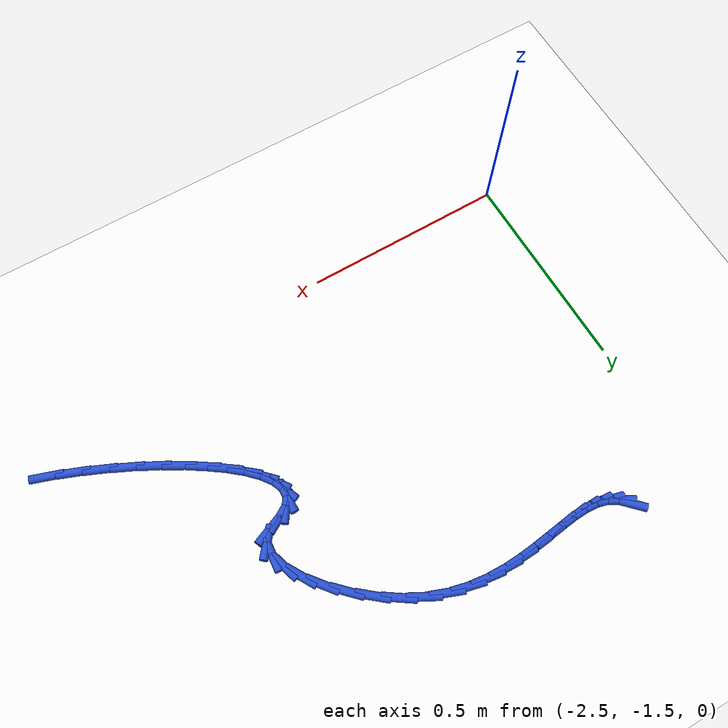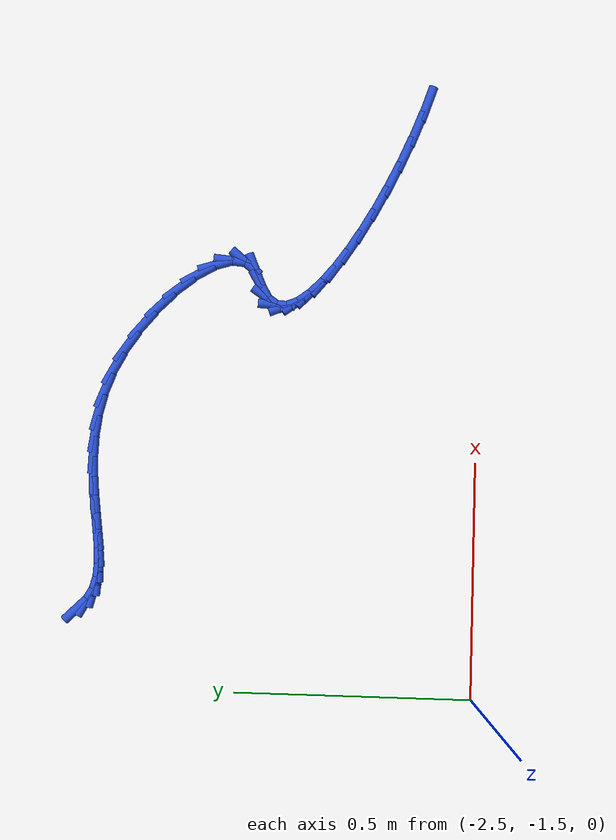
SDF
<sdf version="1.6">
 <world name="default">
  <model name="ground_plane">
   <static>1</static>
   <link name="link">
    <collision name="collision">
     <geometry><plane><normal>0 0 1</normal><size>100 100</size></plane></geometry>
     <surface><friction><ode><mu>100</mu><mu2>50</mu2></ode></friction></surface>
    </collision>
    <visual name="visual">
     <cast_shadows>0</cast_shadows>
     <geometry><plane><normal>0 0 1</normal><size>100 100</size></plane></geometry>
     <material>
      <script><uri>file://media/materials/scripts/gazebo.material</uri><name>Gazebo/WhiteGlow</name></script>
     </material>
    </visual>
   </link>
  </model>
  <model name="line">
   <link name="link_134">
    <pose>-2.328690085437541 -0.6660517396470073 0.01 0 1.57 -0.7948061629573334</pose>
    <collision name="collision">
     <geometry><cylinder><radius>0.01</radius><length>0.08</length></cylinder></geometry>
    </collision>
    <visual name="visual">
     <material>
      <script><name>Gazebo/Blue</name><uri>file://media/materials/scripts/gazebo.material</uri></script>
     </material>
     <geometry><cylinder><radius>0.01</radius><length>0.08</length></cylinder></geometry>
    </visual>
   </link>
   <link name="link_135">
    <pose>-2.3107869364579394 -0.6842949637218563 0.01 0 1.57 -0.509242399845247</pose>
    <collision name="collision">
     <geometry><cylinder><radius>0.01</radius><length>0.08</length></cylinder></geometry>
    </collision>
    <visual name="visual">
     <material>
      <script><name>Gazebo/Blue</name><uri>file://media/materials/scripts/gazebo.material</uri></script>
     </material>
     <geometry><cylinder><radius>0.01</radius><length>0.08</length></cylinder></geometry>
    </visual>
   </link>
   <link name="link_136">
    <pose>-2.289153655210102 -0.696374219925081 0.01 0 1.57 -0.2507882576714948</pose>
    <collision name="collision">
     <geometry><cylinder><radius>0.01</radius><length>0.08</length></cylinder></geometry>
    </collision>
    <visual name="visual">
     <material>
      <script><name>Gazebo/Blue</name><uri>file://media/materials/scripts/gazebo.material</uri></script>
     </material>
     <geometry><cylinder><radius>0.01</radius><length>0.08</length></cylinder></geometry>
    </visual>
   </link>
   <link name="link_137">
    <pose>-2.2638732972823266 -0.7028505860600587 0.01 0 1.57 -0.06898305752131897</pose>
    <collision name="collision">
     <geometry><cylinder><radius>0.01</radius><length>0.08</length></cylinder></geometry>
    </collision>
    <visual name="visual">
     <material>
      <script><name>Gazebo/Blue</name><uri>file://media/materials/scripts/gazebo.material</uri></script>
     </material>
     <geometry><cylinder><radius>0.01</radius><length>0.08</length></cylinder></geometry>
    </visual>
   </link>
   <link name="link_138">
    <pose>-2.235211617304648 -0.7048308985884072 0.01 0 1.57 0.044161655550941</pose>
    <collision name="collision">
     <geometry><cylinder><radius>0.01</radius><length>0.08</length></cylinder></geometry>
    </collision>
    <visual name="visual">
     <material>
      <script><name>Gazebo/Blue</name><uri>file://media/materials/scripts/gazebo.material</uri></script>
     </material>
     <geometry><cylinder><radius>0.01</radius><length>0.08</length></cylinder></geometry>
    </visual>
   </link>
   <link name="link_139">
    <pose>-2.203435951880765 -0.7034267196441689 0.01 0 1.57 0.10580966423407037</pose>
    <collision name="collision">
     <geometry><cylinder><radius>0.01</radius><length>0.08</length></cylinder></geometry>
    </collision>
    <visual name="visual">
     <material>
      <script><name>Gazebo/Blue</name><uri>file://media/materials/scripts/gazebo.material</uri></script>
     </material>
     <geometry><cylinder><radius>0.01</radius><length>0.08</length></cylinder></geometry>
    </visual>
   </link>
   <link name="link_140">
    <pose>-2.1688136376143725 -0.6997496113613847 0.01 0 1.57 0.12933485083657287</pose>
    <collision name="collision">
     <geometry><cylinder><radius>0.01</radius><length>0.08</length></cylinder></geometry>
    </collision>
    <visual name="visual">
     <material>
      <script><name>Gazebo/Blue</name><uri>file://media/materials/scripts/gazebo.material</uri></script>
     </material>
     <geometry><cylinder><radius>0.01</radius><length>0.08</length></cylinder></geometry>
    </visual>
   </link>
   <link name="link_141">
    <pose>-2.1316120111091705 -0.6949111358740966 0.01 0 1.57 0.12308595671876543</pose>
    <collision name="collision">
     <geometry><cylinder><radius>0.01</radius><length>0.08</length></cylinder></geometry>
    </collision>
    <visual name="visual">
     <material>
      <script><name>Gazebo/Blue</name><uri>file://media/materials/scripts/gazebo.material</uri></script>
     </material>
     <geometry><cylinder><radius>0.01</radius><length>0.08</length></cylinder></geometry>
    </visual>
   </link>
   <link name="link_142">
    <pose>-2.0920984089688544 -0.6900228553163459 0.01 0 1.57 0.09181727335157093</pose>
    <collision name="collision">
     <geometry><cylinder><radius>0.01</radius><length>0.08</length></cylinder></geometry>
    </collision>
    <visual name="visual">
     <material>
      <script><name>Gazebo/Blue</name><uri>file://media/materials/scripts/gazebo.material</uri></script>
     </material>
     <geometry><cylinder><radius>0.01</radius><length>0.08</length></cylinder></geometry>
    </visual>
   </link>
   <link name="link_143">
    <pose>-2.0505401677971227 -0.6861963318221744 0.01 0 1.57 0.03813043214113927</pose>
    <collision name="collision">
     <geometry><cylinder><radius>0.01</radius><length>0.08</length></cylinder></geometry>
    </collision>
    <visual name="visual">
     <material>
      <script><name>Gazebo/Blue</name><uri>file://media/materials/scripts/gazebo.material</uri></script>
     </material>
     <geometry><cylinder><radius>0.01</radius><length>0.08</length></cylinder></geometry>
    </visual>
   </link>
   <link name="link_144">
    <pose>-2.0072046241976698 -0.6845431275256235 0.01 0 1.57 -0.036368359047009524</pose>
    <collision name="collision">
     <geometry><cylinder><radius>0.01</radius><length>0.08</length></cylinder></geometry>
    </collision>
    <visual name="visual">
     <material>
      <script><name>Gazebo/Blue</name><uri>file://media/materials/scripts/gazebo.material</uri></script>
     </material>
     <geometry><cylinder><radius>0.01</radius><length>0.08</length></cylinder></geometry>
    </visual>
   </link>
   <link name="link_145">
    <pose>-1.9623591147741952 -0.6861748045607347 0.01 0 1.57 -0.13005719022609996</pose>
    <collision name="collision">
     <geometry><cylinder><radius>0.01</radius><length>0.08</length></cylinder></geometry>
    </collision>
    <visual name="visual">
     <material>
      <script><name>Gazebo/Blue</name><uri>file://media/materials/scripts/gazebo.material</uri></script>
     </material>
     <geometry><cylinder><radius>0.01</radius><length>0.08</length></cylinder></geometry>
    </visual>
   </link>
   <link name="link_146">
    <pose>-1.9162709761303969 -0.6922029250615498 0.01 0 1.57 -0.2403792284057496</pose>
    <collision name="collision">
     <geometry><cylinder><radius>0.01</radius><length>0.08</length></cylinder></geometry>
    </collision>
    <visual name="visual">
     <material>
      <script><name>Gazebo/Blue</name><uri>file://media/materials/scripts/gazebo.material</uri></script>
     </material>
     <geometry><cylinder><radius>0.01</radius><length>0.08</length></cylinder></geometry>
    </visual>
   </link>
   <link name="link_147">
    <pose>-1.869207544869971 -0.7037390511621103 0.01 0 1.57 -0.36319395789943737</pose>
    <collision name="collision">
     <geometry><cylinder><radius>0.01</radius><length>0.08</length></cylinder></geometry>
    </collision>
    <visual name="visual">
     <material>
      <script><name>Gazebo/Blue</name><uri>file://media/materials/scripts/gazebo.material</uri></script>
     </material>
     <geometry><cylinder><radius>0.01</radius><length>0.08</length></cylinder></geometry>
    </visual>
   </link>
   <link name="link_148">
    <pose>-1.821436157596613 -0.7218947449964581 0.01 0 1.57 -0.489639402621013</pose>
    <collision name="collision">
     <geometry><cylinder><radius>0.01</radius><length>0.08</length></cylinder></geometry>
    </collision>
    <visual name="visual">
     <material>
      <script><name>Gazebo/Blue</name><uri>file://media/materials/scripts/gazebo.material</uri></script>
     </material>
     <geometry><cylinder><radius>0.01</radius><length>0.08</length></cylinder></geometry>
    </visual>
   </link>
   <link name="link_149">
    <pose>-1.7733818810251576 -0.7475040726114826 0.01 0 1.57 -0.5989780238515194</pose>
    <collision name="collision">
     <geometry><cylinder><radius>0.01</radius><length>0.08</length></cylinder></geometry>
    </collision>
    <visual name="visual">
     <material>
      <script><name>Gazebo/Blue</name><uri>file://media/materials/scripts/gazebo.material</uri></script>
     </material>
     <geometry><cylinder><radius>0.01</radius><length>0.08</length></cylinder></geometry>
    </visual>
   </link>
   <link name="link_150">
    <pose>-1.7265754384135963 -0.7794559079645443 0.01 0 1.57 -0.6954875602217744</pose>
    <collision name="collision">
     <geometry><cylinder><radius>0.01</radius><length>0.08</length></cylinder></geometry>
    </collision>
    <visual name="visual">
     <material>
      <script><name>Gazebo/Blue</name><uri>file://media/materials/scripts/gazebo.material</uri></script>
     </material>
     <geometry><cylinder><radius>0.01</radius><length>0.08</length></cylinder></geometry>
    </visual>
   </link>
   <link name="link_151">
    <pose>-1.683020545551318 -0.8158069847465057 0.01 0 1.57 -0.7919616935738386</pose>
    <collision name="collision">
     <geometry><cylinder><radius>0.01</radius><length>0.08</length></cylinder></geometry>
    </collision>
    <visual name="visual">
     <material>
      <script><name>Gazebo/Blue</name><uri>file://media/materials/scripts/gazebo.material</uri></script>
     </material>
     <geometry><cylinder><radius>0.01</radius><length>0.08</length></cylinder></geometry>
    </visual>
   </link>
   <link name="link_152">
    <pose>-1.6447227062705978 -0.8546108909273448 0.01 0 1.57 -0.9024941218368407</pose>
    <collision name="collision">
     <geometry><cylinder><radius>0.01</radius><length>0.08</length></cylinder></geometry>
    </collision>
    <visual name="visual">
     <material>
      <script><name>Gazebo/Blue</name><uri>file://media/materials/scripts/gazebo.material</uri></script>
     </material>
     <geometry><cylinder><radius>0.01</radius><length>0.08</length></cylinder></geometry>
    </visual>
   </link>
   <link name="link_153">
    <pose>-1.6136874244037112 -0.8939212144770411 0.01 0 1.57 -1.049125156011582</pose>
    <collision name="collision">
     <geometry><cylinder><radius>0.01</radius><length>0.08</length></cylinder></geometry>
    </collision>
    <visual name="visual">
     <material>
      <script><name>Gazebo/Blue</name><uri>file://media/materials/scripts/gazebo.material</uri></script>
     </material>
     <geometry><cylinder><radius>0.01</radius><length>0.08</length></cylinder></geometry>
    </visual>
   </link>
   <link name="link_154">
    <pose>-1.5919202037829343 -0.9317915433655706 0.01 0 1.57 -1.2753940062139946</pose>
    <collision name="collision">
     <geometry><cylinder><radius>0.01</radius><length>0.08</length></cylinder></geometry>
    </collision>
    <visual name="visual">
     <material>
      <script><name>Gazebo/Blue</name><uri>file://media/materials/scripts/gazebo.material</uri></script>
     </material>
     <geometry><cylinder><radius>0.01</radius><length>0.08</length></cylinder></geometry>
    </visual>
   </link>
   <link name="link_155">
    <pose>-1.581426548240543 -0.9662754655629127 0.01 0 1.57 1.4755346639404754</pose>
    <collision name="collision">
     <geometry><cylinder><radius>0.01</radius><length>0.08</length></cylinder></geometry>
    </collision>
    <visual name="visual">
     <material>
      <script><name>Gazebo/Blue</name><uri>file://media/materials/scripts/gazebo.material</uri></script>
     </material>
     <geometry><cylinder><radius>0.01</radius><length>0.08</length></cylinder></geometry>
    </visual>
   </link>
   <link name="link_156">
    <pose>-1.5842119616088124 -0.9954265690390458 0.01 0 1.57 0.8802977670934119</pose>
    <collision name="collision">
     <geometry><cylinder><radius>0.01</radius><length>0.08</length></cylinder></geometry>
    </collision>
    <visual name="visual">
     <material>
      <script><name>Gazebo/Blue</name><uri>file://media/materials/scripts/gazebo.material</uri></script>
     </material>
     <geometry><cylinder><radius>0.01</radius><length>0.08</length></cylinder></geometry>
    </visual>
   </link>
   <link name="link_157">
    <pose>-1.6022819477200179 -1.0172984417639483 0.01 0 1.57 0.3949341963896124</pose>
    <collision name="collision">
     <geometry><cylinder><radius>0.01</radius><length>0.08</length></cylinder></geometry>
    </collision>
    <visual name="visual">
     <material>
      <script><name>Gazebo/Blue</name><uri>file://media/materials/scripts/gazebo.material</uri></script>
     </material>
     <geometry><cylinder><radius>0.01</radius><length>0.08</length></cylinder></geometry>
    </visual>
   </link>
   <link name="link_158">
    <pose>-1.6352339891464682 -1.031033992542826 0.01 0 1.57 0.5292857121228023</pose>
    <collision name="collision">
     <geometry><cylinder><radius>0.01</radius><length>0.08</length></cylinder></geometry>
    </collision>
    <visual name="visual">
     <material>
      <script><name>Gazebo/Blue</name><uri>file://media/materials/scripts/gazebo.material</uri></script>
     </material>
     <geometry><cylinder><radius>0.01</radius><length>0.08</length></cylinder></geometry>
    </visual>
   </link>
   <link name="link_159">
    <pose>-1.6607828626165073 -1.0459790082172755 0.01 0 1.57 0.9628068015025113</pose>
    <collision name="collision">
     <geometry><cylinder><radius>0.01</radius><length>0.08</length></cylinder></geometry>
    </collision>
    <visual name="visual">
     <material>
      <script><name>Gazebo/Blue</name><uri>file://media/materials/scripts/gazebo.material</uri></script>
     </material>
     <geometry><cylinder><radius>0.01</radius><length>0.08</length></cylinder></geometry>
    </visual>
   </link>
   <link name="link_160">
    <pose>-1.6736288973327151 -1.06443779812045 0.01 0 1.57 1.51432735186983</pose>
    <collision name="collision">
     <geometry><cylinder><radius>0.01</radius><length>0.08</length></cylinder></geometry>
    </collision>
    <visual name="visual">
     <material>
      <script><name>Gazebo/Blue</name><uri>file://media/materials/scripts/gazebo.material</uri></script>
     </material>
     <geometry><cylinder><radius>0.01</radius><length>0.08</length></cylinder></geometry>
    </visual>
   </link>
   <link name="link_161">
    <pose>-1.674842648634885 -1.0859090735406527 0.01 0 1.57 -1.199128010345844</pose>
    <collision name="collision">
     <geometry><cylinder><radius>0.01</radius><length>0.08</length></cylinder></geometry>
    </collision>
    <visual name="visual">
     <material>
      <script><name>Gazebo/Blue</name><uri>file://media/materials/scripts/gazebo.material</uri></script>
     </material>
     <geometry><cylinder><radius>0.01</radius><length>0.08</length></cylinder></geometry>
    </visual>
   </link>
   <link name="link_162">
    <pose>-1.665494671862812 -1.1098915457661886 0.01 0 1.57 -0.9436224629492802</pose>
    <collision name="collision">
     <geometry><cylinder><radius>0.01</radius><length>0.08</length></cylinder></geometry>
    </collision>
    <visual name="visual">
     <material>
      <script><name>Gazebo/Blue</name><uri>file://media/materials/scripts/gazebo.material</uri></script>
     </material>
     <geometry><cylinder><radius>0.01</radius><length>0.08</length></cylinder></geometry>
    </visual>
   </link>
   <link name="link_163">
    <pose>-1.6466555223562889 -1.1358839260853593 0.01 0 1.57 -0.7898033471534791</pose>
    <collision name="collision">
     <geometry><cylinder><radius>0.01</radius><length>0.08</length></cylinder></geometry>
    </collision>
    <visual name="visual">
     <material>
      <script><name>Gazebo/Blue</name><uri>file://media/materials/scripts/gazebo.material</uri></script>
     </material>
     <geometry><cylinder><radius>0.01</radius><length>0.08</length></cylinder></geometry>
    </visual>
   </link>
   <link name="link_164">
    <pose>-1.6193957554551108 -1.1633849257864695 0.01 0 1.57 -0.6890297174736916</pose>
    <collision name="collision">
     <geometry><cylinder><radius>0.01</radius><length>0.08</length></cylinder></geometry>
    </collision>
    <visual name="visual">
     <material>
      <script><name>Gazebo/Blue</name><uri>file://media/materials/scripts/gazebo.material</uri></script>
     </material>
     <geometry><cylinder><radius>0.01</radius><length>0.08</length></cylinder></geometry>
    </visual>
   </link>
   <link name="link_165">
    <pose>-1.5847859264990714 -1.1918932561578226 0.01 0 1.57 -0.6171285113037516</pose>
    <collision name="collision">
     <geometry><cylinder><radius>0.01</radius><length>0.08</length></cylinder></geometry>
    </collision>
    <visual name="visual">
     <material>
      <script><name>Gazebo/Blue</name><uri>file://media/materials/scripts/gazebo.material</uri></script>
     </material>
     <geometry><cylinder><radius>0.01</radius><length>0.08</length></cylinder></geometry>
    </visual>
   </link>
   <link name="link_166">
    <pose>-1.543896590827963 -1.2209076284877236 0.01 0 1.57 -0.5618326720999163</pose>
    <collision name="collision">
     <geometry><cylinder><radius>0.01</radius><length>0.08</length></cylinder></geometry>
    </collision>
    <visual name="visual">
     <material>
      <script><name>Gazebo/Blue</name><uri>file://media/materials/scripts/gazebo.material</uri></script>
     </material>
     <geometry><cylinder><radius>0.01</radius><length>0.08</length></cylinder></geometry>
    </visual>
   </link>
   <link name="link_167">
    <pose>-1.4977983037815825 -1.2499267540644747 0.01 0 1.57 -0.5163793806697657</pose>
    <collision name="collision">
     <geometry><cylinder><radius>0.01</radius><length>0.08</length></cylinder></geometry>
    </collision>
    <visual name="visual">
     <material>
      <script><name>Gazebo/Blue</name><uri>file://media/materials/scripts/gazebo.material</uri></script>
     </material>
     <geometry><cylinder><radius>0.01</radius><length>0.08</length></cylinder></geometry>
    </visual>
   </link>
   <link name="link_168">
    <pose>-1.4475616206997217 -1.2784493441763793 0.01 0 1.57 -0.47665633224940696</pose>
    <collision name="collision">
     <geometry><cylinder><radius>0.01</radius><length>0.08</length></cylinder></geometry>
    </collision>
    <visual name="visual">
     <material>
      <script><name>Gazebo/Blue</name><uri>file://media/materials/scripts/gazebo.material</uri></script>
     </material>
     <geometry><cylinder><radius>0.01</radius><length>0.08</length></cylinder></geometry>
    </visual>
   </link>
   <link name="link_169">
    <pose>-1.394257096922176 -1.305974110111742 0.01 0 1.57 -0.43986141766371833</pose>
    <collision name="collision">
     <geometry><cylinder><radius>0.01</radius><length>0.08</length></cylinder></geometry>
    </collision>
    <visual name="visual">
     <material>
      <script><name>Gazebo/Blue</name><uri>file://media/materials/scripts/gazebo.material</uri></script>
     </material>
     <geometry><cylinder><radius>0.01</radius><length>0.08</length></cylinder></geometry>
    </visual>
   </link>
   <link name="link_170">
    <pose>-1.3389552877887367 -1.331999763158867 0.01 0 1.57 -0.40379905736822536</pose>
    <collision name="collision">
     <geometry><cylinder><radius>0.01</radius><length>0.08</length></cylinder></geometry>
    </collision>
    <visual name="visual">
     <material>
      <script><name>Gazebo/Blue</name><uri>file://media/materials/scripts/gazebo.material</uri></script>
     </material>
     <geometry><cylinder><radius>0.01</radius><length>0.08</length></cylinder></geometry>
    </visual>
   </link>
   <link name="link_171">
    <pose>-1.282726748639202 -1.3560250146060564 0.01 0 1.57 -0.3664361020445341</pose>
    <collision name="collision">
     <geometry><cylinder><radius>0.01</radius><length>0.08</length></cylinder></geometry>
    </collision>
    <visual name="visual">
     <material>
      <script><name>Gazebo/Blue</name><uri>file://media/materials/scripts/gazebo.material</uri></script>
     </material>
     <geometry><cylinder><radius>0.01</radius><length>0.08</length></cylinder></geometry>
    </visual>
   </link>
   <link name="link_172">
    <pose>-1.2266420348133629 -1.3775485757416144 0.01 0 1.57 -0.325525960441718</pose>
    <collision name="collision">
     <geometry><cylinder><radius>0.01</radius><length>0.08</length></cylinder></geometry>
    </collision>
    <visual name="visual">
     <material>
      <script><name>Gazebo/Blue</name><uri>file://media/materials/scripts/gazebo.material</uri></script>
     </material>
     <geometry><cylinder><radius>0.01</radius><length>0.08</length></cylinder></geometry>
    </visual>
   </link>
  </model>
 </world>
</sdf>
